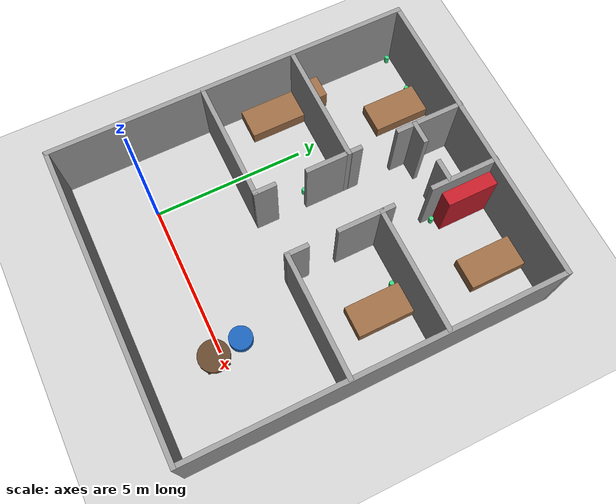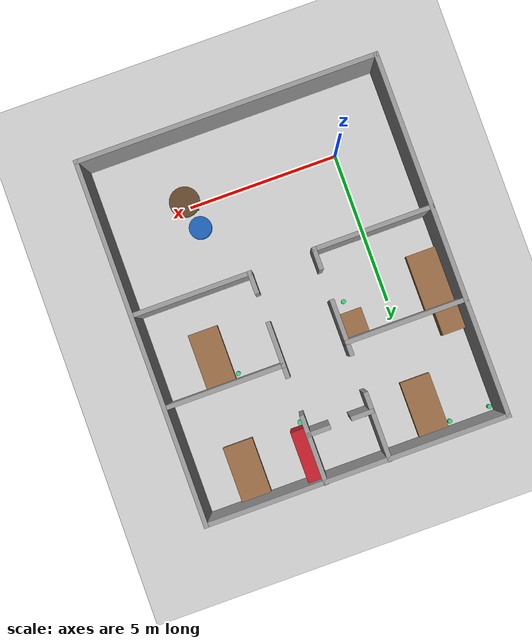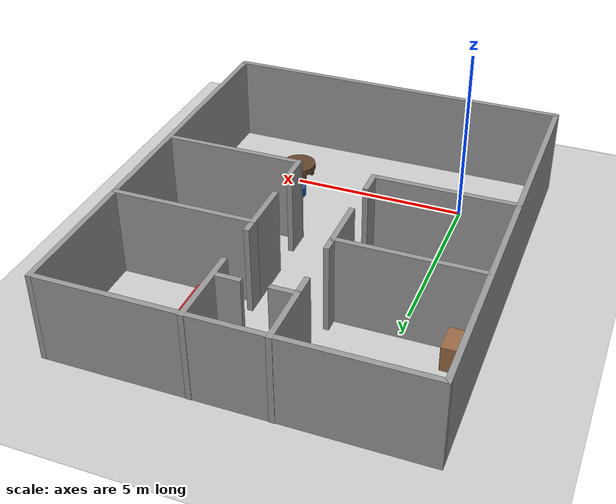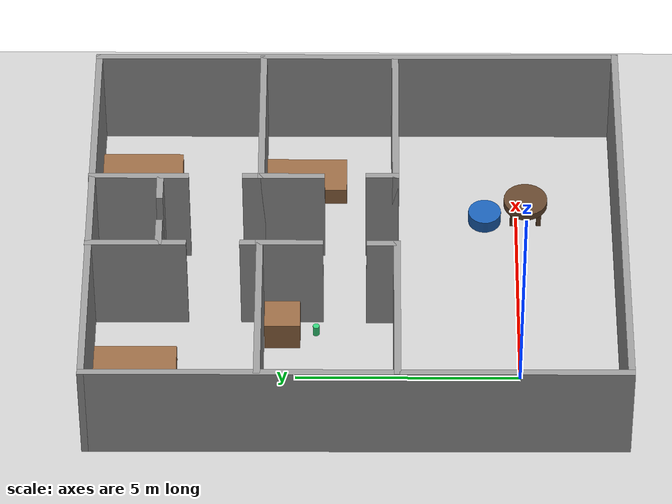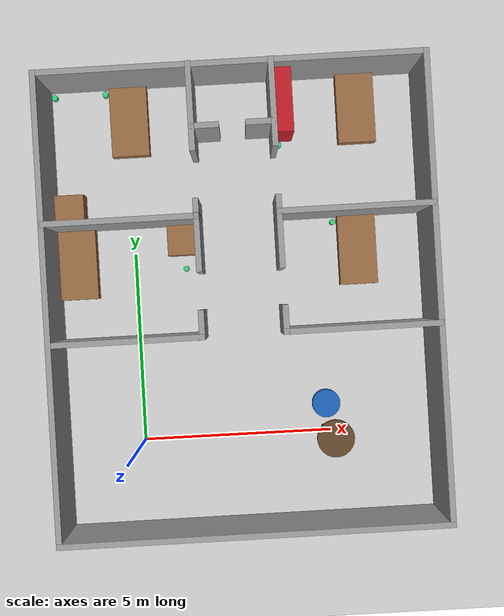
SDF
<sdf version="1.7">
 <world name="default">
  <light name="sun" type="directional">
   <pose>0 0 10 0 -0 0</pose>
   <diffuse>0.8 0.8 0.8 1</diffuse>
   <specular>0.2 0.2 0.2 1</specular>
   <attenuation>
    <range>1000</range>
    <constant>0.9</constant>
    <linear>0.01</linear>
    <quadratic>0.001</quadratic>
   </attenuation>
   <direction>-0.5 0.1 -0.9</direction>
   <spot><inner_angle>0</inner_angle><outer_angle>0</outer_angle><falloff>0</falloff></spot>
  </light>
  <model name="ground_plane">
   <static>1</static>
   <link name="link">
    <collision name="collision">
     <geometry><plane><normal>0 0 1</normal><size>100 100</size></plane></geometry>
     <surface><friction><ode><mu>100</mu><mu2>50</mu2></ode></friction></surface>
    </collision>
    <visual name="visual">
     <cast_shadows>0</cast_shadows>
     <geometry><plane><normal>0 0 1</normal><size>100 100</size></plane></geometry>
     <material>
      <script><uri>file://media/materials/scripts/gazebo.material</uri><name>Gazebo/Grey</name></script>
     </material>
    </visual>
   </link>
  </model>
  <gravity>0 0 -9.8</gravity>
  <magnetic_field>6e-06 2.3e-05 -4.2e-05</magnetic_field>
  <atmosphere type="adiabatic"/>
  <physics type="ode">
   <max_step_size>0.001</max_step_size>
   <real_time_factor>1</real_time_factor>
   <real_time_update_rate>1000</real_time_update_rate>
  </physics>
  <scene><ambient>0.4 0.4 0.4 1</ambient><background>0.7 0.7 0.7 1</background><shadows>1</shadows></scene>
  <audio><device>default</device></audio>
  <spherical_coordinates>
   <surface_model>EARTH_WGS84</surface_model>
   <latitude_deg>0</latitude_deg>
   <longitude_deg>0</longitude_deg>
   <elevation>0</elevation>
   <heading_deg>0</heading_deg>
  </spherical_coordinates>
  <model name="Untitled">
   <pose>4.12572 3.66792 0 0 -0 0.003554</pose>
   <link name="Wall_0">
    <collision name="Wall_0_Collision">
     <geometry><box><size>10 0.15 2.5</size></box></geometry>
     <pose>0 0 1.25 0 -0 0</pose>
    </collision>
    <visual name="Wall_0_Visual">
     <pose>0 0 1.25 0 -0 0</pose>
     <geometry><box><size>10 0.15 2.5</size></box></geometry>
     <material>
      <script><uri>file://media/materials/scripts/gazebo.material</uri><name>Gazebo/Grey</name></script>
      <ambient>1 1 1 1</ambient>
     </material>
     <meta><layer>0</layer></meta>
    </visual>
    <pose>-1.3075 -5.93156 0 0 -0 3.3e-05</pose>
   </link>
   <link name="Wall_14">
    <collision name="Wall_14_Collision">
     <geometry><box><size>4 0.15 2.5</size></box></geometry>
     <pose>0 0 1.25 0 -0 0</pose>
    </collision>
    <visual name="Wall_14_Visual">
     <pose>0 0 1.25 0 -0 0</pose>
     <geometry><box><size>4 0.15 2.5</size></box></geometry>
     <material>
      <script><uri>file://media/materials/scripts/gazebo.material</uri><name>Gazebo/Grey</name></script>
      <ambient>1 1 1 1</ambient>
     </material>
     <meta><layer>0</layer></meta>
    </visual>
    <pose>1.65589 2.13135 0 0 -0 3.14159</pose>
   </link>
   <link name="Wall_17">
    <collision name="Wall_17_Collision">
     <geometry><box><size>4.00005 0.15 2.5</size></box></geometry>
     <pose>0 0 1.25 0 -0 0</pose>
    </collision>
    <visual name="Wall_17_Visual">
     <pose>0 0 1.25 0 -0 0</pose>
     <geometry><box><size>4.00005 0.15 2.5</size></box></geometry>
     <material>
      <script><uri>file://media/materials/scripts/gazebo.material</uri><name>Gazebo/Grey</name></script>
      <ambient>1 1 1 1</ambient>
     </material>
     <meta><layer>0</layer></meta>
    </visual>
    <pose>-4.27584 2.13172 0 0 -0 0</pose>
   </link>
   <link name="Wall_28">
    <collision name="Wall_28_Collision">
     <geometry><box><size>2.25 0.15 2.5</size></box></geometry>
     <pose>0 0 1.25 0 -0 0</pose>
    </collision>
    <visual name="Wall_28_Visual">
     <pose>0 0 1.25 0 -0 0</pose>
     <geometry><box><size>2.25 0.15 2.5</size></box></geometry>
     <material>
      <script><uri>file://media/materials/scripts/gazebo.material</uri><name>Gazebo/Grey</name></script>
      <ambient>1 1 1 1</ambient>
     </material>
     <meta><layer>0</layer></meta>
    </visual>
    <pose>-2.35084 4.88172 0 0 -0 1.5708</pose>
   </link>
   <link name="Wall_31">
    <collision name="Wall_31_Collision">
     <geometry><box><size>2.25 0.15 2.5</size></box></geometry>
     <pose>0 0 1.25 0 -0 0</pose>
    </collision>
    <visual name="Wall_31_Visual">
     <pose>0 0 1.25 0 -0 0</pose>
     <geometry><box><size>2.25 0.15 2.5</size></box></geometry>
     <material>
      <script><uri>file://media/materials/scripts/gazebo.material</uri><name>Gazebo/Grey</name></script>
      <ambient>1 1 1 1</ambient>
     </material>
     <meta><layer>0</layer></meta>
    </visual>
    <pose>-0.269114 4.88135 0 0 -0 1.5708</pose>
   </link>
   <link name="Wall_33">
    <collision name="Wall_33_Collision">
     <geometry><box><size>0.75 0.15 2.5</size></box></geometry>
     <pose>0 0 1.25 0 -0 0</pose>
    </collision>
    <visual name="Wall_33_Visual">
     <pose>0 0 1.25 0 -0 0</pose>
     <geometry><box><size>0.75 0.15 2.5</size></box></geometry>
     <material>
      <script><uri>file://media/materials/scripts/gazebo.material</uri><name>Gazebo/Grey</name></script>
      <ambient>1 1 1 1</ambient>
     </material>
     <meta><layer>0</layer></meta>
    </visual>
    <pose>-2.03024 4.37324 0 0 -0 0</pose>
   </link>
   <link name="Wall_36">
    <collision name="Wall_36_Collision">
     <geometry><box><size>0.75 0.15 2.5</size></box></geometry>
     <pose>0 0 1.25 0 -0 0</pose>
    </collision>
    <visual name="Wall_36_Visual">
     <pose>0 0 1.25 0 -0 0</pose>
     <geometry><box><size>0.75 0.15 2.5</size></box></geometry>
     <material>
      <script><uri>file://media/materials/scripts/gazebo.material</uri><name>Gazebo/Grey</name></script>
      <ambient>1 1 1 1</ambient>
     </material>
     <meta><layer>0</layer></meta>
    </visual>
    <pose>-0.612674 4.39073 0 0 -0 3.14159</pose>
   </link>
   <link name="Wall_4">
    <collision name="Wall_4_Collision">
     <geometry><box><size>12 0.15 2.5</size></box></geometry>
     <pose>0 0 1.25 0 -0 0</pose>
    </collision>
    <visual name="Wall_4_Visual">
     <pose>0 0 1.25 0 -0 0</pose>
     <geometry><box><size>12 0.15 2.5</size></box></geometry>
     <material>
      <script><uri>file://media/materials/scripts/gazebo.material</uri><name>Gazebo/Grey</name></script>
      <ambient>1 1 1 1</ambient>
     </material>
     <meta><layer>0</layer></meta>
    </visual>
    <pose>-6.2325 -0.006559 0 0 -0 1.57077</pose>
   </link>
   <link name="Wall_40">
    <collision name="Wall_40_Collision">
     <geometry><box><size>4 0.15 2.5</size></box></geometry>
     <pose>0 0 1.25 0 -0 0</pose>
    </collision>
    <visual name="Wall_40_Visual">
     <pose>0 0 1.25 0 -0 0</pose>
     <geometry><box><size>4 0.15 2.5</size></box></geometry>
     <material>
      <script><uri>file://media/materials/scripts/gazebo.material</uri><name>Gazebo/Grey</name></script>
      <ambient>1 1 1 1</ambient>
     </material>
     <meta><layer>0</layer></meta>
    </visual>
    <pose>-4.29477 -0.903426 0 0 -0 0</pose>
   </link>
   <link name="Wall_42">
    <collision name="Wall_42_Collision">
     <geometry><box><size>4 0.15 2.5</size></box></geometry>
     <pose>0 0 1.25 0 -0 0</pose>
    </collision>
    <visual name="Wall_42_Visual">
     <pose>0 0 1.25 0 -0 0</pose>
     <geometry><box><size>4 0.15 2.5</size></box></geometry>
     <material>
      <script><uri>file://media/materials/scripts/gazebo.material</uri><name>Gazebo/Grey</name></script>
      <ambient>1 1 1 1</ambient>
     </material>
     <meta><layer>0</layer></meta>
    </visual>
    <pose>1.66772 -0.885502 0 0 -0 3.14159</pose>
   </link>
   <link name="Wall_49">
    <collision name="Wall_49_Collision">
     <geometry><box><size>1.5 0.15 2.5</size></box></geometry>
     <pose>0 0 1.25 0 -0 0</pose>
    </collision>
    <visual name="Wall_49_Visual">
     <pose>0 0 1.25 0 -0 0</pose>
     <geometry><box><size>1.5 0.15 2.5</size></box></geometry>
     <material>
      <script><uri>file://media/materials/scripts/gazebo.material</uri><name>Gazebo/Grey</name></script>
      <ambient>1 1 1 1</ambient>
     </material>
     <meta><layer>0</layer></meta>
    </visual>
    <pose>-2.35084 1.47683 0 0 -0 -1.5708</pose>
   </link>
   <link name="Wall_51">
    <collision name="Wall_51_Collision">
     <geometry><box><size>1.5 0.15 2.5</size></box></geometry>
     <pose>0 0 1.25 0 -0 0</pose>
    </collision>
    <visual name="Wall_51_Visual">
     <pose>0 0 1.25 0 -0 0</pose>
     <geometry><box><size>1.5 0.15 2.5</size></box></geometry>
     <material>
      <script><uri>file://media/materials/scripts/gazebo.material</uri><name>Gazebo/Grey</name></script>
      <ambient>1 1 1 1</ambient>
     </material>
     <meta><layer>0</layer></meta>
    </visual>
    <pose>-0.269114 1.45635 0 0 -0 -1.5708</pose>
   </link>
   <link name="Wall_53">
    <collision name="Wall_53_Collision">
     <geometry><box><size>0.5 0.15 2.5</size></box></geometry>
     <pose>0 0 1.25 0 -0 0</pose>
    </collision>
    <visual name="Wall_53_Visual">
     <pose>0 0 1.25 0 -0 0</pose>
     <geometry><box><size>0.5 0.15 2.5</size></box></geometry>
     <material>
      <script><uri>file://media/materials/scripts/gazebo.material</uri><name>Gazebo/Grey</name></script>
      <ambient>1 1 1 1</ambient>
     </material>
     <meta><layer>0</layer></meta>
    </visual>
    <pose>-2.35084 2.32683 0 0 -0 1.5708</pose>
   </link>
   <link name="Wall_55">
    <collision name="Wall_55_Collision">
     <geometry><box><size>0.5 0.15 2.5</size></box></geometry>
     <pose>0 0 1.25 0 -0 0</pose>
    </collision>
    <visual name="Wall_55_Visual">
     <pose>0 0 1.25 0 -0 0</pose>
     <geometry><box><size>0.5 0.15 2.5</size></box></geometry>
     <material>
      <script><uri>file://media/materials/scripts/gazebo.material</uri><name>Gazebo/Grey</name></script>
      <ambient>1 1 1 1</ambient>
     </material>
     <meta><layer>0</layer></meta>
    </visual>
    <pose>-0.269114 2.30635 0 0 -0 1.5708</pose>
   </link>
   <link name="Wall_57">
    <collision name="Wall_57_Collision">
     <geometry><box><size>0.75 0.15 2.5</size></box></geometry>
     <pose>0 0 1.25 0 -0 0</pose>
    </collision>
    <visual name="Wall_57_Visual">
     <pose>0 0 1.25 0 -0 0</pose>
     <geometry><box><size>0.75 0.15 2.5</size></box></geometry>
     <material>
      <script><uri>file://media/materials/scripts/gazebo.material</uri><name>Gazebo/Grey</name></script>
      <ambient>1 1 1 1</ambient>
     </material>
     <meta><layer>0</layer></meta>
    </visual>
    <pose>-2.36977 -0.603426 0 0 -0 1.5708</pose>
   </link>
   <link name="Wall_59">
    <collision name="Wall_59_Collision">
     <geometry><box><size>0.75 0.15 2.5</size></box></geometry>
     <pose>0 0 1.25 0 -0 0</pose>
    </collision>
    <visual name="Wall_59_Visual">
     <pose>0 0 1.25 0 -0 0</pose>
     <geometry><box><size>0.75 0.15 2.5</size></box></geometry>
     <material>
      <script><uri>file://media/materials/scripts/gazebo.material</uri><name>Gazebo/Grey</name></script>
      <ambient>1 1 1 1</ambient>
     </material>
     <meta><layer>0</layer></meta>
    </visual>
    <pose>-0.257281 -0.585502 0 0 -0 1.5708</pose>
   </link>
   <link name="Wall_6">
    <collision name="Wall_6_Collision">
     <geometry><box><size>12 0.15 2.5</size></box></geometry>
     <pose>0 0 1.25 0 -0 0</pose>
    </collision>
    <visual name="Wall_6_Visual">
     <pose>0 0 1.25 0 -0 0</pose>
     <geometry><box><size>12 0.15 2.5</size></box></geometry>
     <material>
      <script><uri>file://media/materials/scripts/gazebo.material</uri><name>Gazebo/Grey</name></script>
      <ambient>1 1 1 1</ambient>
     </material>
     <meta><layer>0</layer></meta>
    </visual>
    <pose>3.61766 -0.006398 0 0 -0 1.5708</pose>
   </link>
   <link name="Wall_9">
    <collision name="Wall_9_Collision">
     <geometry><box><size>10.0003 0.15 2.5</size></box></geometry>
     <pose>0 0 1.25 0 -0 0</pose>
    </collision>
    <visual name="Wall_9_Visual">
     <pose>0 0 1.25 0 -0 0</pose>
     <geometry><box><size>10.0003 0.15 2.5</size></box></geometry>
     <material>
      <script><uri>file://media/materials/scripts/gazebo.material</uri><name>Gazebo/Grey</name></script>
      <ambient>1 1 1 1</ambient>
     </material>
     <meta><layer>0</layer></meta>
    </visual>
    <pose>-1.30734 5.9186 0 0 -0 0</pose>
   </link>
   <static>1</static>
  </model>
  <model name="lv_lajitong">
   <link name="link">
    <inertial>
     <mass>1</mass>
     <inertia><ixx>0.145833</ixx><ixy>0</ixy><ixz>0</ixz><iyy>0.145833</iyy><iyz>0</iyz><izz>0.125</izz></inertia>
    </inertial>
    <visual name="visual">
     <geometry><cylinder><radius>0.0738659</radius><length>0.256539</length></cylinder></geometry>
     <material>
      <script><name>Gazebo/Grey</name><uri>file://media/materials/scripts/gazebo.material</uri></script>
      <shader type="pixel"><normal_map>__default__</normal_map></shader>
      <ambient>0.2 0.82 0.478 1</ambient>
      <diffuse>0.7 0.7 0.7 1</diffuse>
      <specular>0.01 0.01 0.01 1</specular>
      <emissive>0 0 0 1</emissive>
     </material>
    </visual>
    <collision name="collision">
     <geometry><cylinder><radius>0.073866</radius><length>0.256539</length></cylinder></geometry>
     <surface>
      <friction>
       <ode><mu>1</mu><mu2>1</mu2><fdir1>0 0 0</fdir1><slip1>0</slip1><slip2>0</slip2></ode>
       <torsional>
        <coefficient>1</coefficient>
        <patch_radius>0</patch_radius>
        <surface_radius>0</surface_radius>
        <use_patch_radius>1</use_patch_radius>
        <ode><slip>0</slip></ode>
       </torsional>
      </friction>
      <bounce><restitution_coefficient>0</restitution_coefficient><threshold>1e+06</threshold></bounce>
      <contact>
       <collide_without_contact>0</collide_without_contact>
       <collide_without_contact_bitmask>1</collide_without_contact_bitmask>
       <collide_bitmask>1</collide_bitmask>
       <ode>
        <soft_cfm>0</soft_cfm>
        <soft_erp>0.2</soft_erp>
        <kp>1e+13</kp>
        <kd>1</kd>
        <max_vel>0.01</max_vel>
        <min_depth>0</min_depth>
       </ode>
       <bullet>
        <split_impulse>1</split_impulse>
        <split_impulse_penetration_threshold>-0.01</split_impulse_penetration_threshold>
        <soft_cfm>0</soft_cfm>
        <soft_erp>0.2</soft_erp>
        <kp>1e+13</kp>
        <kd>1</kd>
       </bullet>
      </contact>
     </surface>
    </collision>
   </link>
   <static>0</static>
   <pose>5.3447 5.5957 0.12826 0 -0 0</pose>
  </model>
  <model name="lv_lajitong_clone">
   <link name="link">
    <inertial>
     <mass>1</mass>
     <inertia><ixx>0.145833</ixx><ixy>0</ixy><ixz>0</ixz><iyy>0.145833</iyy><iyz>0</iyz><izz>0.125</izz></inertia>
    </inertial>
    <visual name="visual">
     <geometry><cylinder><radius>0.0738659</radius><length>0.256539</length></cylinder></geometry>
     <material>
      <script><name>Gazebo/Grey</name><uri>file://media/materials/scripts/gazebo.material</uri></script>
      <shader type="pixel"><normal_map>__default__</normal_map></shader>
      <ambient>0.2 0.82 0.478 1</ambient>
      <diffuse>0.7 0.7 0.7 1</diffuse>
      <specular>0.01 0.01 0.01 1</specular>
      <emissive>0 0 0 1</emissive>
     </material>
    </visual>
    <collision name="collision">
     <geometry><cylinder><radius>0.073866</radius><length>0.256539</length></cylinder></geometry>
     <surface>
      <friction>
       <ode><mu>1</mu><mu2>1</mu2><fdir1>0 0 0</fdir1><slip1>0</slip1><slip2>0</slip2></ode>
       <torsional>
        <coefficient>1</coefficient>
        <patch_radius>0</patch_radius>
        <surface_radius>0</surface_radius>
        <use_patch_radius>1</use_patch_radius>
        <ode><slip>0</slip></ode>
       </torsional>
      </friction>
      <bounce><restitution_coefficient>0</restitution_coefficient><threshold>1e+06</threshold></bounce>
      <contact>
       <collide_without_contact>0</collide_without_contact>
       <collide_without_contact_bitmask>1</collide_without_contact_bitmask>
       <collide_bitmask>1</collide_bitmask>
       <ode>
        <soft_cfm>0</soft_cfm>
        <soft_erp>0.2</soft_erp>
        <kp>1e+13</kp>
        <kd>1</kd>
        <max_vel>0.01</max_vel>
        <min_depth>0</min_depth>
       </ode>
       <bullet>
        <split_impulse>1</split_impulse>
        <split_impulse_penetration_threshold>-0.01</split_impulse_penetration_threshold>
        <soft_cfm>0</soft_cfm>
        <soft_erp>0.2</soft_erp>
        <kp>1e+13</kp>
        <kd>1</kd>
       </bullet>
      </contact>
     </surface>
    </collision>
   </link>
   <static>0</static>
   <pose>1.34756 4.55048 0.12826 0 -0 0</pose>
  </model>
  <model name="lan_canzhaowu1">
   <link name="link">
    <inertial>
     <mass>1</mass>
     <inertia><ixx>0.145833</ixx><ixy>0</ixy><ixz>0</ixz><iyy>0.145833</iyy><iyz>0</iyz><izz>0.125</izz></inertia>
    </inertial>
    <visual name="visual">
     <geometry><cylinder><radius>0.373748</radius><length>0.308137</length></cylinder></geometry>
     <material>
      <script><name>Gazebo/Grey</name><uri>file://media/materials/scripts/gazebo.material</uri></script>
      <shader type="pixel"><normal_map>__default__</normal_map></shader>
      <ambient>0.102 0.373 0.706 1</ambient>
      <diffuse>0.7 0.7 0.7 1</diffuse>
      <specular>0.01 0.01 0.01 1</specular>
      <emissive>0 0 0 1</emissive>
     </material>
    </visual>
    <collision name="collision">
     <geometry><cylinder><radius>0.373748</radius><length>0.308137</length></cylinder></geometry>
     <surface>
      <friction>
       <ode><mu>1</mu><mu2>1</mu2><fdir1>0 0 0</fdir1><slip1>0</slip1><slip2>0</slip2></ode>
       <torsional>
        <coefficient>1</coefficient>
        <patch_radius>0</patch_radius>
        <surface_radius>0</surface_radius>
        <use_patch_radius>1</use_patch_radius>
        <ode><slip>0</slip></ode>
       </torsional>
      </friction>
      <bounce><restitution_coefficient>0</restitution_coefficient><threshold>1e+06</threshold></bounce>
      <contact>
       <collide_without_contact>0</collide_without_contact>
       <collide_without_contact_bitmask>1</collide_without_contact_bitmask>
       <collide_bitmask>1</collide_bitmask>
       <ode>
        <soft_cfm>0</soft_cfm>
        <soft_erp>0.2</soft_erp>
        <kp>1e+13</kp>
        <kd>1</kd>
        <max_vel>0.01</max_vel>
        <min_depth>0</min_depth>
       </ode>
       <bullet>
        <split_impulse>1</split_impulse>
        <split_impulse_penetration_threshold>-0.01</split_impulse_penetration_threshold>
        <soft_cfm>0</soft_cfm>
        <soft_erp>0.2</soft_erp>
        <kp>1e+13</kp>
        <kd>1</kd>
       </bullet>
      </contact>
     </surface>
    </collision>
   </link>
   <static>0</static>
   <pose>4.91374 0.729083 0.154066 2e-06 -1e-06 -0.062667</pose>
  </model>
  <model name="zong_chuang">
   <link name="link">
    <inertial>
     <mass>1</mass>
     <inertia>
      <ixx>0.166667</ixx>
      <ixy>0</ixy>
      <ixz>0</ixz>
      <iyy>0.166667</iyy>
      <iyz>0</iyz>
      <izz>0.166667</izz>
     </inertia>
    </inertial>
    <visual name="visual">
     <geometry><box><size>1 1.83631 0.441286</size></box></geometry>
     <material>
      <script><name>Gazebo/Grey</name><uri>file://media/materials/scripts/gazebo.material</uri></script>
      <shader type="pixel"><normal_map>__default__</normal_map></shader>
      <ambient>0.596 0.416 0.267 1</ambient>
      <diffuse>0.7 0.7 0.7 1</diffuse>
      <specular>0.01 0.01 0.01 1</specular>
      <emissive>0 0 0 1</emissive>
     </material>
    </visual>
    <collision name="collision">
     <geometry><box><size>1 1.83631 0.441286</size></box></geometry>
     <surface>
      <friction>
       <ode><mu>1</mu><mu2>1</mu2><fdir1>0 0 0</fdir1><slip1>0</slip1><slip2>0</slip2></ode>
       <torsional>
        <coefficient>1</coefficient>
        <patch_radius>0</patch_radius>
        <surface_radius>0</surface_radius>
        <use_patch_radius>1</use_patch_radius>
        <ode><slip>0</slip></ode>
       </torsional>
      </friction>
      <bounce><restitution_coefficient>0</restitution_coefficient><threshold>1e+06</threshold></bounce>
      <contact>
       <collide_without_contact>0</collide_without_contact>
       <collide_without_contact_bitmask>1</collide_without_contact_bitmask>
       <collide_bitmask>1</collide_bitmask>
       <ode>
        <soft_cfm>0</soft_cfm>
        <soft_erp>0.2</soft_erp>
        <kp>1e+13</kp>
        <kd>1</kd>
        <max_vel>0.01</max_vel>
        <min_depth>0</min_depth>
       </ode>
       <bullet>
        <split_impulse>1</split_impulse>
        <split_impulse_penetration_threshold>-0.01</split_impulse_penetration_threshold>
        <soft_cfm>0</soft_cfm>
        <soft_erp>0.2</soft_erp>
        <kp>1e+13</kp>
        <kd>1</kd>
       </bullet>
      </contact>
     </surface>
    </collision>
   </link>
   <static>0</static>
   <pose>-1.52557 4.78639 0.220638 0 -1e-05 0.003565</pose>
  </model>
  <model name="zong_chuang_clone">
   <link name="link">
    <inertial>
     <mass>1</mass>
     <inertia>
      <ixx>0.166667</ixx>
      <ixy>0</ixy>
      <ixz>0</ixz>
      <iyy>0.166667</iyy>
      <iyz>0</iyz>
      <izz>0.166667</izz>
     </inertia>
    </inertial>
    <visual name="visual">
     <geometry><box><size>1 1.83631 0.441286</size></box></geometry>
     <material>
      <script><name>Gazebo/Grey</name><uri>file://media/materials/scripts/gazebo.material</uri></script>
      <shader type="pixel"><normal_map>__default__</normal_map></shader>
      <ambient>0.596 0.416 0.267 1</ambient>
      <diffuse>0.7 0.7 0.7 1</diffuse>
      <specular>0.01 0.01 0.01 1</specular>
      <emissive>0 0 0 1</emissive>
     </material>
    </visual>
    <collision name="collision">
     <geometry><box><size>1 1.83631 0.441286</size></box></geometry>
     <surface>
      <friction>
       <ode><mu>1</mu><mu2>1</mu2><fdir1>0 0 0</fdir1><slip1>0</slip1><slip2>0</slip2></ode>
       <torsional>
        <coefficient>1</coefficient>
        <patch_radius>0</patch_radius>
        <surface_radius>0</surface_radius>
        <use_patch_radius>1</use_patch_radius>
        <ode><slip>0</slip></ode>
       </torsional>
      </friction>
      <bounce><restitution_coefficient>0</restitution_coefficient><threshold>1e+06</threshold></bounce>
      <contact>
       <collide_without_contact>0</collide_without_contact>
       <collide_without_contact_bitmask>1</collide_without_contact_bitmask>
       <collide_bitmask>1</collide_bitmask>
       <ode>
        <soft_cfm>0</soft_cfm>
        <soft_erp>0.2</soft_erp>
        <kp>1e+13</kp>
        <kd>1</kd>
        <max_vel>0.01</max_vel>
        <min_depth>0</min_depth>
       </ode>
       <bullet>
        <split_impulse>1</split_impulse>
        <split_impulse_penetration_threshold>-0.01</split_impulse_penetration_threshold>
        <soft_cfm>0</soft_cfm>
        <soft_erp>0.2</soft_erp>
        <kp>1e+13</kp>
        <kd>1</kd>
       </bullet>
      </contact>
     </surface>
    </collision>
   </link>
   <static>0</static>
   <pose>5.9563 4.81262 0.220638 -0 -1e-05 0.003561</pose>
  </model>
  <model name="zhuozi">
   <link name="link">
    <inertial>
     <mass>1</mass>
     <inertia>
      <ixx>0.166667</ixx>
      <ixy>0</ixy>
      <ixz>0</ixz>
      <iyy>0.166667</iyy>
      <iyz>0</iyz>
      <izz>0.166667</izz>
     </inertia>
    </inertial>
    <visual name="visual">
     <geometry><box><size>0.774311 0.79644 0.712189</size></box></geometry>
     <material>
      <script><name>Gazebo/Grey</name><uri>file://media/materials/scripts/gazebo.material</uri></script>
      <shader type="pixel"><normal_map>__default__</normal_map></shader>
      <ambient>0.596 0.416 0.267 1</ambient>
      <diffuse>0.7 0.7 0.7 1</diffuse>
      <specular>0.01 0.01 0.01 1</specular>
      <emissive>0 0 0 1</emissive>
     </material>
    </visual>
    <collision name="collision">
     <geometry><box><size>0.774311 0.79644 0.712189</size></box></geometry>
     <surface>
      <friction>
       <ode><mu>1</mu><mu2>1</mu2><fdir1>0 0 0</fdir1><slip1>0</slip1><slip2>0</slip2></ode>
       <torsional>
        <coefficient>1</coefficient>
        <patch_radius>0</patch_radius>
        <surface_radius>0</surface_radius>
        <use_patch_radius>1</use_patch_radius>
        <ode><slip>0</slip></ode>
       </torsional>
      </friction>
      <bounce><restitution_coefficient>0</restitution_coefficient><threshold>1e+06</threshold></bounce>
      <contact>
       <collide_without_contact>0</collide_without_contact>
       <collide_without_contact_bitmask>1</collide_without_contact_bitmask>
       <collide_bitmask>1</collide_bitmask>
       <ode>
        <soft_cfm>0</soft_cfm>
        <soft_erp>0.2</soft_erp>
        <kp>1e+13</kp>
        <kd>1</kd>
        <max_vel>0.01</max_vel>
        <min_depth>0</min_depth>
       </ode>
       <bullet>
        <split_impulse>1</split_impulse>
        <split_impulse_penetration_threshold>-0.01</split_impulse_penetration_threshold>
        <soft_cfm>0</soft_cfm>
        <soft_erp>0.2</soft_erp>
        <kp>1e+13</kp>
        <kd>1</kd>
       </bullet>
      </contact>
     </surface>
    </collision>
   </link>
   <static>0</static>
   <pose>1.29217 5.30178 0.356094 0 -0 0.003551</pose>
  </model>
  <model name="lv_lajitong_clone_clone">
   <link name="link">
    <inertial>
     <mass>1</mass>
     <inertia><ixx>0.145833</ixx><ixy>0</ixy><ixz>0</ixz><iyy>0.145833</iyy><iyz>0</iyz><izz>0.125</izz></inertia>
    </inertial>
    <visual name="visual">
     <geometry><cylinder><radius>0.0738659</radius><length>0.256539</length></cylinder></geometry>
     <material>
      <script><name>Gazebo/Grey</name><uri>file://media/materials/scripts/gazebo.material</uri></script>
      <shader type="pixel"><normal_map>__default__</normal_map></shader>
      <ambient>0.2 0.82 0.478 1</ambient>
      <diffuse>0.7 0.7 0.7 1</diffuse>
      <specular>0.01 0.01 0.01 1</specular>
      <emissive>0 0 0 1</emissive>
     </material>
    </visual>
    <collision name="collision">
     <geometry><cylinder><radius>0.073866</radius><length>0.256539</length></cylinder></geometry>
     <surface>
      <friction>
       <ode><mu>1</mu><mu2>1</mu2><fdir1>0 0 0</fdir1><slip1>0</slip1><slip2>0</slip2></ode>
       <torsional>
        <coefficient>1</coefficient>
        <patch_radius>0</patch_radius>
        <surface_radius>0</surface_radius>
        <use_patch_radius>1</use_patch_radius>
        <ode><slip>0</slip></ode>
       </torsional>
      </friction>
      <bounce><restitution_coefficient>0</restitution_coefficient><threshold>1e+06</threshold></bounce>
      <contact>
       <collide_without_contact>0</collide_without_contact>
       <collide_without_contact_bitmask>1</collide_without_contact_bitmask>
       <collide_bitmask>1</collide_bitmask>
       <ode>
        <soft_cfm>0</soft_cfm>
        <soft_erp>0.2</soft_erp>
        <kp>1e+13</kp>
        <kd>1</kd>
        <max_vel>0.01</max_vel>
        <min_depth>0</min_depth>
       </ode>
       <bullet>
        <split_impulse>1</split_impulse>
        <split_impulse_penetration_threshold>-0.01</split_impulse_penetration_threshold>
        <soft_cfm>0</soft_cfm>
        <soft_erp>0.2</soft_erp>
        <kp>1e+13</kp>
        <kd>1</kd>
       </bullet>
      </contact>
     </surface>
    </collision>
   </link>
   <static>0</static>
   <pose>1.92402 8.2214 0.12826 0 -0 0</pose>
  </model>
  <model name="lv_lajitong_clone_clone_0">
   <link name="link">
    <inertial>
     <mass>1</mass>
     <inertia><ixx>0.145833</ixx><ixy>0</ixy><ixz>0</ixz><iyy>0.145833</iyy><iyz>0</iyz><izz>0.125</izz></inertia>
    </inertial>
    <visual name="visual">
     <geometry><cylinder><radius>0.0738659</radius><length>0.256539</length></cylinder></geometry>
     <material>
      <script><name>Gazebo/Grey</name><uri>file://media/materials/scripts/gazebo.material</uri></script>
      <shader type="pixel"><normal_map>__default__</normal_map></shader>
      <ambient>0.2 0.82 0.478 1</ambient>
      <diffuse>0.7 0.7 0.7 1</diffuse>
      <specular>0.01 0.01 0.01 1</specular>
      <emissive>0 0 0 1</emissive>
     </material>
    </visual>
    <collision name="collision">
     <geometry><cylinder><radius>0.073866</radius><length>0.256539</length></cylinder></geometry>
     <surface>
      <friction>
       <ode><mu>1</mu><mu2>1</mu2><fdir1>0 0 0</fdir1><slip1>0</slip1><slip2>0</slip2></ode>
       <torsional>
        <coefficient>1</coefficient>
        <patch_radius>0</patch_radius>
        <surface_radius>0</surface_radius>
        <use_patch_radius>1</use_patch_radius>
        <ode><slip>0</slip></ode>
       </torsional>
      </friction>
      <bounce><restitution_coefficient>0</restitution_coefficient><threshold>1e+06</threshold></bounce>
      <contact>
       <collide_without_contact>0</collide_without_contact>
       <collide_without_contact_bitmask>1</collide_without_contact_bitmask>
       <collide_bitmask>1</collide_bitmask>
       <ode>
        <soft_cfm>0</soft_cfm>
        <soft_erp>0.2</soft_erp>
        <kp>1e+13</kp>
        <kd>1</kd>
        <max_vel>0.01</max_vel>
        <min_depth>0</min_depth>
       </ode>
       <bullet>
        <split_impulse>1</split_impulse>
        <split_impulse_penetration_threshold>-0.01</split_impulse_penetration_threshold>
        <soft_cfm>0</soft_cfm>
        <soft_erp>0.2</soft_erp>
        <kp>1e+13</kp>
        <kd>1</kd>
       </bullet>
      </contact>
     </surface>
    </collision>
   </link>
   <static>0</static>
   <pose>-1.94636 9.33378 0.128269 0 -0 0</pose>
  </model>
  <model name="zong_chuang_clone_0">
   <link name="link">
    <inertial>
     <mass>1</mass>
     <inertia>
      <ixx>0.166667</ixx>
      <ixy>0</ixy>
      <ixz>0</ixz>
      <iyy>0.166667</iyy>
      <iyz>0</iyz>
      <izz>0.166667</izz>
     </inertia>
    </inertial>
    <visual name="visual">
     <geometry><box><size>1 1.83631 0.441286</size></box></geometry>
     <material>
      <script><name>Gazebo/Grey</name><uri>file://media/materials/scripts/gazebo.material</uri></script>
      <shader type="pixel"><normal_map>__default__</normal_map></shader>
      <ambient>0.596 0.416 0.267 1</ambient>
      <diffuse>0.7 0.7 0.7 1</diffuse>
      <specular>0.01 0.01 0.01 1</specular>
      <emissive>0 0 0 1</emissive>
     </material>
    </visual>
    <collision name="collision">
     <geometry><box><size>1 1.83631 0.441286</size></box></geometry>
     <surface>
      <friction>
       <ode><mu>1</mu><mu2>1</mu2><fdir1>0 0 0</fdir1><slip1>0</slip1><slip2>0</slip2></ode>
       <torsional>
        <coefficient>1</coefficient>
        <patch_radius>0</patch_radius>
        <surface_radius>0</surface_radius>
        <use_patch_radius>1</use_patch_radius>
        <ode><slip>0</slip></ode>
       </torsional>
      </friction>
      <bounce><restitution_coefficient>0</restitution_coefficient><threshold>1e+06</threshold></bounce>
      <contact>
       <collide_without_contact>0</collide_without_contact>
       <collide_without_contact_bitmask>1</collide_without_contact_bitmask>
       <collide_bitmask>1</collide_bitmask>
       <ode>
        <soft_cfm>0</soft_cfm>
        <soft_erp>0.2</soft_erp>
        <kp>1e+13</kp>
        <kd>1</kd>
        <max_vel>0.01</max_vel>
        <min_depth>0</min_depth>
       </ode>
       <bullet>
        <split_impulse>1</split_impulse>
        <split_impulse_penetration_threshold>-0.01</split_impulse_penetration_threshold>
        <soft_cfm>0</soft_cfm>
        <soft_erp>0.2</soft_erp>
        <kp>1e+13</kp>
        <kd>1</kd>
       </bullet>
      </contact>
     </surface>
    </collision>
   </link>
   <static>0</static>
   <pose>0.038357 8.55196 0.220638 0 1e-05 0.003577</pose>
  </model>
  <model name="lv_lajitong_clone_clone_0_clone">
   <link name="link">
    <inertial>
     <mass>1</mass>
     <inertia><ixx>0.145833</ixx><ixy>0</ixy><ixz>0</ixz><iyy>0.145833</iyy><iyz>0</iyz><izz>0.125</izz></inertia>
    </inertial>
    <visual name="visual">
     <geometry><cylinder><radius>0.0738659</radius><length>0.256539</length></cylinder></geometry>
     <material>
      <script><name>Gazebo/Grey</name><uri>file://media/materials/scripts/gazebo.material</uri></script>
      <shader type="pixel"><normal_map>__default__</normal_map></shader>
      <ambient>0.2 0.82 0.478 1</ambient>
      <diffuse>0.7 0.7 0.7 1</diffuse>
      <specular>0.01 0.01 0.01 1</specular>
      <emissive>0 0 0 1</emissive>
     </material>
    </visual>
    <collision name="collision">
     <geometry><cylinder><radius>0.073866</radius><length>0.256539</length></cylinder></geometry>
     <surface>
      <friction>
       <ode><mu>1</mu><mu2>1</mu2><fdir1>0 0 0</fdir1><slip1>0</slip1><slip2>0</slip2></ode>
       <torsional>
        <coefficient>1</coefficient>
        <patch_radius>0</patch_radius>
        <surface_radius>0</surface_radius>
        <use_patch_radius>1</use_patch_radius>
        <ode><slip>0</slip></ode>
       </torsional>
      </friction>
      <bounce><restitution_coefficient>0</restitution_coefficient><threshold>1e+06</threshold></bounce>
      <contact>
       <collide_without_contact>0</collide_without_contact>
       <collide_without_contact_bitmask>1</collide_without_contact_bitmask>
       <collide_bitmask>1</collide_bitmask>
       <ode>
        <soft_cfm>0</soft_cfm>
        <soft_erp>0.2</soft_erp>
        <kp>1e+13</kp>
        <kd>1</kd>
        <max_vel>0.01</max_vel>
        <min_depth>0</min_depth>
       </ode>
       <bullet>
        <split_impulse>1</split_impulse>
        <split_impulse_penetration_threshold>-0.01</split_impulse_penetration_threshold>
        <soft_cfm>0</soft_cfm>
        <soft_erp>0.2</soft_erp>
        <kp>1e+13</kp>
        <kd>1</kd>
       </bullet>
      </contact>
     </surface>
    </collision>
   </link>
   <static>0</static>
   <pose>-0.581048 9.351 0.12826 0 -0 0</pose>
  </model>
  <model name="lv_lajitong_clone_clone_0_clone_0">
   <link name="link">
    <inertial>
     <mass>1</mass>
     <inertia><ixx>0.145833</ixx><ixy>0</ixy><ixz>0</ixz><iyy>0.145833</iyy><iyz>0</iyz><izz>0.125</izz></inertia>
    </inertial>
    <visual name="visual">
     <geometry><cylinder><radius>0.0738659</radius><length>0.256539</length></cylinder></geometry>
     <material>
      <script><name>Gazebo/Grey</name><uri>file://media/materials/scripts/gazebo.material</uri></script>
      <shader type="pixel"><normal_map>__default__</normal_map></shader>
      <ambient>0.2 0.82 0.478 1</ambient>
      <diffuse>0.7 0.7 0.7 1</diffuse>
      <specular>0.01 0.01 0.01 1</specular>
      <emissive>0 0 0 1</emissive>
     </material>
    </visual>
    <collision name="collision">
     <geometry><cylinder><radius>0.073866</radius><length>0.256539</length></cylinder></geometry>
     <surface>
      <friction>
       <ode><mu>1</mu><mu2>1</mu2><fdir1>0 0 0</fdir1><slip1>0</slip1><slip2>0</slip2></ode>
       <torsional>
        <coefficient>1</coefficient>
        <patch_radius>0</patch_radius>
        <surface_radius>0</surface_radius>
        <use_patch_radius>1</use_patch_radius>
        <ode><slip>0</slip></ode>
       </torsional>
      </friction>
      <bounce><restitution_coefficient>0</restitution_coefficient><threshold>1e+06</threshold></bounce>
      <contact>
       <collide_without_contact>0</collide_without_contact>
       <collide_without_contact_bitmask>1</collide_without_contact_bitmask>
       <collide_bitmask>1</collide_bitmask>
       <ode>
        <soft_cfm>0</soft_cfm>
        <soft_erp>0.2</soft_erp>
        <kp>1e+13</kp>
        <kd>1</kd>
        <max_vel>0.01</max_vel>
        <min_depth>0</min_depth>
       </ode>
       <bullet>
        <split_impulse>1</split_impulse>
        <split_impulse_penetration_threshold>-0.01</split_impulse_penetration_threshold>
        <soft_cfm>0</soft_cfm>
        <soft_erp>0.2</soft_erp>
        <kp>1e+13</kp>
        <kd>1</kd>
       </bullet>
      </contact>
     </surface>
    </collision>
   </link>
   <static>0</static>
   <pose>4.0022 7.74306 0.12826 0 -0 0</pose>
  </model>
  <model name="zhuozi_clone">
   <link name="link">
    <inertial>
     <mass>1</mass>
     <inertia>
      <ixx>0.166667</ixx>
      <ixy>0</ixy>
      <ixz>0</ixz>
      <iyy>0.166667</iyy>
      <iyz>0</iyz>
      <izz>0.166667</izz>
     </inertia>
    </inertial>
    <visual name="visual">
     <geometry><box><size>0.774311 0.79644 0.712189</size></box></geometry>
     <material>
      <script><name>Gazebo/Grey</name><uri>file://media/materials/scripts/gazebo.material</uri></script>
      <shader type="pixel"><normal_map>__default__</normal_map></shader>
      <ambient>0.596 0.416 0.267 1</ambient>
      <diffuse>0.7 0.7 0.7 1</diffuse>
      <specular>0.01 0.01 0.01 1</specular>
      <emissive>0 0 0 1</emissive>
     </material>
    </visual>
    <collision name="collision">
     <geometry><box><size>0.774311 0.79644 0.712189</size></box></geometry>
     <surface>
      <friction>
       <ode><mu>1</mu><mu2>1</mu2><fdir1>0 0 0</fdir1><slip1>0</slip1><slip2>0</slip2></ode>
       <torsional>
        <coefficient>1</coefficient>
        <patch_radius>0</patch_radius>
        <surface_radius>0</surface_radius>
        <use_patch_radius>1</use_patch_radius>
        <ode><slip>0</slip></ode>
       </torsional>
      </friction>
      <bounce><restitution_coefficient>0</restitution_coefficient><threshold>1e+06</threshold></bounce>
      <contact>
       <collide_without_contact>0</collide_without_contact>
       <collide_without_contact_bitmask>1</collide_without_contact_bitmask>
       <collide_bitmask>1</collide_bitmask>
       <ode>
        <soft_cfm>0</soft_cfm>
        <soft_erp>0.2</soft_erp>
        <kp>1e+13</kp>
        <kd>1</kd>
        <max_vel>0.01</max_vel>
        <min_depth>0</min_depth>
       </ode>
       <bullet>
        <split_impulse>1</split_impulse>
        <split_impulse_penetration_threshold>-0.01</split_impulse_penetration_threshold>
        <soft_cfm>0</soft_cfm>
        <soft_erp>0.2</soft_erp>
        <kp>1e+13</kp>
        <kd>1</kd>
       </bullet>
      </contact>
     </surface>
    </collision>
   </link>
   <static>0</static>
   <pose>-1.64625 6.25237 0.35609 4e-06 8e-06 0.003554</pose>
  </model>
  <model name="zong_chuang_clone_clone">
   <link name="link">
    <inertial>
     <mass>1</mass>
     <inertia>
      <ixx>0.166667</ixx>
      <ixy>0</ixy>
      <ixz>0</ixz>
      <iyy>0.166667</iyy>
      <iyz>0</iyz>
      <izz>0.166667</izz>
     </inertia>
    </inertial>
    <visual name="visual">
     <geometry><box><size>1 1.83631 0.441286</size></box></geometry>
     <material>
      <script><name>Gazebo/Grey</name><uri>file://media/materials/scripts/gazebo.material</uri></script>
      <shader type="pixel"><normal_map>__default__</normal_map></shader>
      <ambient>0.596 0.416 0.267 1</ambient>
      <diffuse>0.7 0.7 0.7 1</diffuse>
      <specular>0.01 0.01 0.01 1</specular>
      <emissive>0 0 0 1</emissive>
     </material>
    </visual>
    <collision name="collision">
     <geometry><box><size>1 1.83631 0.441286</size></box></geometry>
     <surface>
      <friction>
       <ode><mu>1</mu><mu2>1</mu2><fdir1>0 0 0</fdir1><slip1>0</slip1><slip2>0</slip2></ode>
       <torsional>
        <coefficient>1</coefficient>
        <patch_radius>0</patch_radius>
        <surface_radius>0</surface_radius>
        <use_patch_radius>1</use_patch_radius>
        <ode><slip>0</slip></ode>
       </torsional>
      </friction>
      <bounce><restitution_coefficient>0</restitution_coefficient><threshold>1e+06</threshold></bounce>
      <contact>
       <collide_without_contact>0</collide_without_contact>
       <collide_without_contact_bitmask>1</collide_without_contact_bitmask>
       <collide_bitmask>1</collide_bitmask>
       <ode>
        <soft_cfm>0</soft_cfm>
        <soft_erp>0.2</soft_erp>
        <kp>1e+13</kp>
        <kd>1</kd>
        <max_vel>0.01</max_vel>
        <min_depth>0</min_depth>
       </ode>
       <bullet>
        <split_impulse>1</split_impulse>
        <split_impulse_penetration_threshold>-0.01</split_impulse_penetration_threshold>
        <soft_cfm>0</soft_cfm>
        <soft_erp>0.2</soft_erp>
        <kp>1e+13</kp>
        <kd>1</kd>
       </bullet>
      </contact>
     </surface>
    </collision>
   </link>
   <static>0</static>
   <pose>6.10271 8.60041 0.220638 0 1e-05 0.00355</pose>
  </model>
  <model name="shuchu">
   <link name="link">
    <inertial>
     <mass>1</mass>
     <inertia>
      <ixx>0.166667</ixx>
      <ixy>0</ixy>
      <ixz>0</ixz>
      <iyy>0.166667</iyy>
      <iyz>0</iyz>
      <izz>0.166667</izz>
     </inertia>
    </inertial>
    <visual name="visual">
     <geometry><box><size>0.446695 1.65344 1.87811</size></box></geometry>
     <material>
      <script><name>Gazebo/Grey</name><uri>file://media/materials/scripts/gazebo.material</uri></script>
      <shader type="pixel"><normal_map>__default__</normal_map></shader>
      <ambient>0.753 0.11 0.157 1</ambient>
      <diffuse>0.7 0.7 0.7 1</diffuse>
      <specular>0.01 0.01 0.01 1</specular>
      <emissive>0 0 0 1</emissive>
     </material>
    </visual>
    <collision name="collision">
     <geometry><box><size>0.446695 1.65344 1.87811</size></box></geometry>
     <surface>
      <friction>
       <ode><mu>1</mu><mu2>1</mu2><fdir1>0 0 0</fdir1><slip1>0</slip1><slip2>0</slip2></ode>
       <torsional>
        <coefficient>1</coefficient>
        <patch_radius>0</patch_radius>
        <surface_radius>0</surface_radius>
        <use_patch_radius>1</use_patch_radius>
        <ode><slip>0</slip></ode>
       </torsional>
      </friction>
      <bounce><restitution_coefficient>0</restitution_coefficient><threshold>1e+06</threshold></bounce>
      <contact>
       <collide_without_contact>0</collide_without_contact>
       <collide_without_contact_bitmask>1</collide_without_contact_bitmask>
       <collide_bitmask>1</collide_bitmask>
       <ode>
        <soft_cfm>0</soft_cfm>
        <soft_erp>0.2</soft_erp>
        <kp>1e+13</kp>
        <kd>1</kd>
        <max_vel>0.01</max_vel>
        <min_depth>0</min_depth>
       </ode>
       <bullet>
        <split_impulse>1</split_impulse>
        <split_impulse_penetration_threshold>-0.01</split_impulse_penetration_threshold>
        <soft_cfm>0</soft_cfm>
        <soft_erp>0.2</soft_erp>
        <kp>1e+13</kp>
        <kd>1</kd>
       </bullet>
      </contact>
     </surface>
    </collision>
   </link>
   <static>0</static>
   <pose>4.13747 8.6848 0.939052 -3e-06 -0 0.003408</pose>
  </model>
  <model name="zuozi3">
   <link name="link">
    <inertial>
     <mass>0.174923</mass>
     <inertia>
      <ixx>0.0113787</ixx>
      <ixy>0</ixy>
      <ixz>0</ixz>
      <iyy>0.0113787</iyy>
      <iyz>0</iyz>
      <izz>0.0218654</izz>
     </inertia>
    </inertial>
    <pose>1.8063 -0.231357 -0.079527 0 -0 0</pose>
    <visual name="visual">
     <geometry><cylinder><radius>0.5</radius><length>0.174925</length></cylinder></geometry>
     <material>
      <script><name>Gazebo/Grey</name><uri>file://media/materials/scripts/gazebo.material</uri></script>
      <shader type="pixel"><normal_map>__default__</normal_map></shader>
      <emissive>0 0 0 1</emissive>
      <ambient>0.388 0.271 0.173 1</ambient>
      <diffuse>0.7 0.7 0.7 1</diffuse>
      <specular>0.01 0.01 0.01 1</specular>
     </material>
    </visual>
    <collision name="collision">
     <geometry><cylinder><radius>0.5</radius><length>0.174925</length></cylinder></geometry>
     <surface>
      <friction>
       <ode><mu>1</mu><mu2>1</mu2><fdir1>0 0 0</fdir1><slip1>0</slip1><slip2>0</slip2></ode>
       <torsional>
        <coefficient>1</coefficient>
        <patch_radius>0</patch_radius>
        <surface_radius>0</surface_radius>
        <use_patch_radius>1</use_patch_radius>
        <ode><slip>0</slip></ode>
       </torsional>
      </friction>
      <bounce><restitution_coefficient>0</restitution_coefficient><threshold>1e+06</threshold></bounce>
      <contact>
       <collide_without_contact>0</collide_without_contact>
       <collide_without_contact_bitmask>1</collide_without_contact_bitmask>
       <collide_bitmask>1</collide_bitmask>
       <ode>
        <soft_cfm>0</soft_cfm>
        <soft_erp>0.2</soft_erp>
        <kp>1e+13</kp>
        <kd>1</kd>
        <max_vel>0.01</max_vel>
        <min_depth>0</min_depth>
       </ode>
       <bullet>
        <split_impulse>1</split_impulse>
        <split_impulse_penetration_threshold>-0.01</split_impulse_penetration_threshold>
        <soft_cfm>0</soft_cfm>
        <soft_erp>0.2</soft_erp>
        <kp>1e+13</kp>
        <kd>1</kd>
       </bullet>
      </contact>
     </surface>
    </collision>
   </link>
   <link name="link_2">
    <inertial>
     <mass>0.00344945</mass>
     <inertia>
      <ixx>4.349e-05</ixx>
      <ixy>0</ixy>
      <ixz>0</ixz>
      <iyy>4.228e-05</iyy>
      <iyz>0</iyz>
      <izz>5.44e-06</izz>
     </inertia>
    </inertial>
    <pose>1.5063 0.068643 -0.329527 -3e-06 -4e-06 -0</pose>
    <visual name="visual">
     <geometry><box><size>0.085739 0.10761 0.373793</size></box></geometry>
     <material>
      <lighting>1</lighting>
      <script><uri>file://media/materials/scripts/gazebo.material</uri><name>Gazebo/Grey</name></script>
      <shader type="pixel"><normal_map>__default__</normal_map></shader>
      <emissive>0 0 0 1</emissive>
      <ambient>0.388 0.271 0.173 1</ambient>
      <diffuse>0.7 0.7 0.7 1</diffuse>
      <specular>0.01 0.01 0.01 1</specular>
     </material>
    </visual>
    <collision name="collision">
     <geometry><box><size>0.085739 0.10761 0.373793</size></box></geometry>
     <surface>
      <friction>
       <ode><mu>1</mu><mu2>1</mu2><fdir1>0 0 0</fdir1><slip1>0</slip1><slip2>0</slip2></ode>
       <torsional>
        <coefficient>1</coefficient>
        <patch_radius>0</patch_radius>
        <surface_radius>0</surface_radius>
        <use_patch_radius>1</use_patch_radius>
        <ode><slip>0</slip></ode>
       </torsional>
      </friction>
      <bounce><restitution_coefficient>0</restitution_coefficient><threshold>1e+06</threshold></bounce>
      <contact>
       <collide_without_contact>0</collide_without_contact>
       <collide_without_contact_bitmask>1</collide_without_contact_bitmask>
       <collide_bitmask>1</collide_bitmask>
       <ode>
        <soft_cfm>0</soft_cfm>
        <soft_erp>0.2</soft_erp>
        <kp>1e+13</kp>
        <kd>1</kd>
        <max_vel>0.01</max_vel>
        <min_depth>0</min_depth>
       </ode>
       <bullet>
        <split_impulse>1</split_impulse>
        <split_impulse_penetration_threshold>-0.01</split_impulse_penetration_threshold>
        <soft_cfm>0</soft_cfm>
        <soft_erp>0.2</soft_erp>
        <kp>1e+13</kp>
        <kd>1</kd>
       </bullet>
      </contact>
     </surface>
    </collision>
   </link>
   <link name="link_2_clone">
    <inertial>
     <mass>0.00344945</mass>
     <inertia>
      <ixx>4.349e-05</ixx>
      <ixy>0</ixy>
      <ixz>0</ixz>
      <iyy>4.228e-05</iyy>
      <iyz>0</iyz>
      <izz>5.44e-06</izz>
     </inertia>
    </inertial>
    <pose>1.5063 -0.531357 -0.329527 -6e-06 -8e-06 0</pose>
    <visual name="visual">
     <geometry><box><size>0.085739 0.10761 0.373793</size></box></geometry>
     <material>
      <lighting>1</lighting>
      <script><uri>file://media/materials/scripts/gazebo.material</uri><name>Gazebo/Grey</name></script>
      <shader type="pixel"><normal_map>__default__</normal_map></shader>
      <emissive>0 0 0 1</emissive>
      <ambient>0.388 0.271 0.173 1</ambient>
      <diffuse>0.7 0.7 0.7 1</diffuse>
      <specular>0.01 0.01 0.01 1</specular>
     </material>
    </visual>
    <collision name="collision">
     <geometry><box><size>0.085739 0.10761 0.373793</size></box></geometry>
     <surface>
      <friction>
       <ode><mu>1</mu><mu2>1</mu2><fdir1>0 0 0</fdir1><slip1>0</slip1><slip2>0</slip2></ode>
       <torsional>
        <coefficient>1</coefficient>
        <patch_radius>0</patch_radius>
        <surface_radius>0</surface_radius>
        <use_patch_radius>1</use_patch_radius>
        <ode><slip>0</slip></ode>
       </torsional>
      </friction>
      <bounce><restitution_coefficient>0</restitution_coefficient><threshold>1e+06</threshold></bounce>
      <contact>
       <collide_without_contact>0</collide_without_contact>
       <collide_without_contact_bitmask>1</collide_without_contact_bitmask>
       <collide_bitmask>1</collide_bitmask>
       <ode>
        <soft_cfm>0</soft_cfm>
        <soft_erp>0.2</soft_erp>
        <kp>1e+13</kp>
        <kd>1</kd>
        <max_vel>0.01</max_vel>
        <min_depth>0</min_depth>
       </ode>
       <bullet>
        <split_impulse>1</split_impulse>
        <split_impulse_penetration_threshold>-0.01</split_impulse_penetration_threshold>
        <soft_cfm>0</soft_cfm>
        <soft_erp>0.2</soft_erp>
        <kp>1e+13</kp>
        <kd>1</kd>
       </bullet>
      </contact>
     </surface>
    </collision>
   </link>
   <link name="link_2_clone_0">
    <inertial>
     <mass>0.00344945</mass>
     <inertia>
      <ixx>4.349e-05</ixx>
      <ixy>0</ixy>
      <ixz>0</ixz>
      <iyy>4.228e-05</iyy>
      <iyz>0</iyz>
      <izz>5.44e-06</izz>
     </inertia>
    </inertial>
    <pose>2.1063 0.068643 -0.329527 -6e-06 -8e-06 0</pose>
    <visual name="visual">
     <geometry><box><size>0.085739 0.10761 0.373793</size></box></geometry>
     <material>
      <lighting>1</lighting>
      <script><uri>file://media/materials/scripts/gazebo.material</uri><name>Gazebo/Grey</name></script>
      <shader type="pixel"><normal_map>__default__</normal_map></shader>
      <emissive>0 0 0 1</emissive>
      <ambient>0.388 0.271 0.173 1</ambient>
      <diffuse>0.7 0.7 0.7 1</diffuse>
      <specular>0.01 0.01 0.01 1</specular>
     </material>
    </visual>
    <collision name="collision">
     <geometry><box><size>0.085739 0.10761 0.373793</size></box></geometry>
     <surface>
      <friction>
       <ode><mu>1</mu><mu2>1</mu2><fdir1>0 0 0</fdir1><slip1>0</slip1><slip2>0</slip2></ode>
       <torsional>
        <coefficient>1</coefficient>
        <patch_radius>0</patch_radius>
        <surface_radius>0</surface_radius>
        <use_patch_radius>1</use_patch_radius>
        <ode><slip>0</slip></ode>
       </torsional>
      </friction>
      <bounce><restitution_coefficient>0</restitution_coefficient><threshold>1e+06</threshold></bounce>
      <contact>
       <collide_without_contact>0</collide_without_contact>
       <collide_without_contact_bitmask>1</collide_without_contact_bitmask>
       <collide_bitmask>1</collide_bitmask>
       <ode>
        <soft_cfm>0</soft_cfm>
        <soft_erp>0.2</soft_erp>
        <kp>1e+13</kp>
        <kd>1</kd>
        <max_vel>0.01</max_vel>
        <min_depth>0</min_depth>
       </ode>
       <bullet>
        <split_impulse>1</split_impulse>
        <split_impulse_penetration_threshold>-0.01</split_impulse_penetration_threshold>
        <soft_cfm>0</soft_cfm>
        <soft_erp>0.2</soft_erp>
        <kp>1e+13</kp>
        <kd>1</kd>
       </bullet>
      </contact>
     </surface>
    </collision>
   </link>
   <link name="link_2_clone_1">
    <inertial>
     <mass>0.00344945</mass>
     <inertia>
      <ixx>4.349e-05</ixx>
      <ixy>0</ixy>
      <ixz>0</ixz>
      <iyy>4.228e-05</iyy>
      <iyz>0</iyz>
      <izz>5.44e-06</izz>
     </inertia>
    </inertial>
    <pose>2.1063 -0.531357 -0.329527 -6e-06 -8e-06 0</pose>
    <visual name="visual">
     <geometry><box><size>0.085739 0.10761 0.373793</size></box></geometry>
     <material>
      <lighting>1</lighting>
      <script><uri>file://media/materials/scripts/gazebo.material</uri><name>Gazebo/Grey</name></script>
      <shader type="pixel"><normal_map>__default__</normal_map></shader>
      <emissive>0 0 0 1</emissive>
      <ambient>0.388 0.271 0.173 1</ambient>
      <diffuse>0.7 0.7 0.7 1</diffuse>
      <specular>0.01 0.01 0.01 1</specular>
     </material>
    </visual>
    <collision name="collision">
     <geometry><box><size>0.085739 0.10761 0.373793</size></box></geometry>
     <surface>
      <friction>
       <ode><mu>1</mu><mu2>1</mu2><fdir1>0 0 0</fdir1><slip1>0</slip1><slip2>0</slip2></ode>
       <torsional>
        <coefficient>1</coefficient>
        <patch_radius>0</patch_radius>
        <surface_radius>0</surface_radius>
        <use_patch_radius>1</use_patch_radius>
        <ode><slip>0</slip></ode>
       </torsional>
      </friction>
      <bounce><restitution_coefficient>0</restitution_coefficient><threshold>1e+06</threshold></bounce>
      <contact>
       <collide_without_contact>0</collide_without_contact>
       <collide_without_contact_bitmask>1</collide_without_contact_bitmask>
       <collide_bitmask>1</collide_bitmask>
       <ode>
        <soft_cfm>0</soft_cfm>
        <soft_erp>0.2</soft_erp>
        <kp>1e+13</kp>
        <kd>1</kd>
        <max_vel>0.01</max_vel>
        <min_depth>0</min_depth>
       </ode>
       <bullet>
        <split_impulse>1</split_impulse>
        <split_impulse_penetration_threshold>-0.01</split_impulse_penetration_threshold>
        <soft_cfm>0</soft_cfm>
        <soft_erp>0.2</soft_erp>
        <kp>1e+13</kp>
        <kd>1</kd>
       </bullet>
      </contact>
     </surface>
    </collision>
   </link>
   <joint name="link_JOINT_0" type="fixed">
    <parent>link</parent>
    <child>link_2</child>
    <physics>
     <ode><limit><cfm>0</cfm><erp>0.2</erp></limit><suspension><cfm>0</cfm><erp>0.2</erp></suspension></ode>
    </physics>
   </joint>
   <joint name="link_JOINT_1" type="revolute">
    <parent>link</parent>
    <child>link_2_clone</child>
    <axis>
     <xyz>1 0 0</xyz>
     <limit>
      <lower>-1.79769e+308</lower>
      <upper>1.79769e+308</upper>
      <effort>-1</effort>
      <velocity>-1</velocity>
     </limit>
     <dynamics>
      <spring_reference>0</spring_reference>
      <spring_stiffness>0</spring_stiffness>
      <damping>0</damping>
     </dynamics>
    </axis>
    <physics>
     <ode><limit><cfm>0</cfm><erp>0.2</erp></limit><suspension><cfm>0</cfm><erp>0.2</erp></suspension></ode>
    </physics>
   </joint>
   <joint name="link_JOINT_2" type="revolute">
    <parent>link</parent>
    <child>link_2_clone_0</child>
    <axis>
     <xyz>1 0 0</xyz>
     <limit>
      <lower>-1.79769e+308</lower>
      <upper>1.79769e+308</upper>
      <effort>-1</effort>
      <velocity>-1</velocity>
     </limit>
     <dynamics>
      <spring_reference>0</spring_reference>
      <spring_stiffness>0</spring_stiffness>
      <damping>0</damping>
     </dynamics>
    </axis>
    <physics>
     <ode><limit><cfm>0</cfm><erp>0.2</erp></limit><suspension><cfm>0</cfm><erp>0.2</erp></suspension></ode>
    </physics>
   </joint>
   <joint name="link_JOINT_3" type="revolute">
    <parent>link</parent>
    <child>link_2_clone_1</child>
    <axis>
     <xyz>1 0 0</xyz>
     <limit>
      <lower>-1.79769e+308</lower>
      <upper>1.79769e+308</upper>
      <effort>-1</effort>
      <velocity>-1</velocity>
     </limit>
     <dynamics>
      <spring_reference>0</spring_reference>
      <spring_stiffness>0</spring_stiffness>
      <damping>0</damping>
     </dynamics>
    </axis>
    <physics>
     <ode><limit><cfm>0</cfm><erp>0.2</erp></limit><suspension><cfm>0</cfm><erp>0.2</erp></suspension></ode>
    </physics>
   </joint>
   <static>0</static>
   <pose>3.30436 0.025602 0.499997 3e-06 4e-06 -0</pose>
  </model>
 </world>
</sdf>
